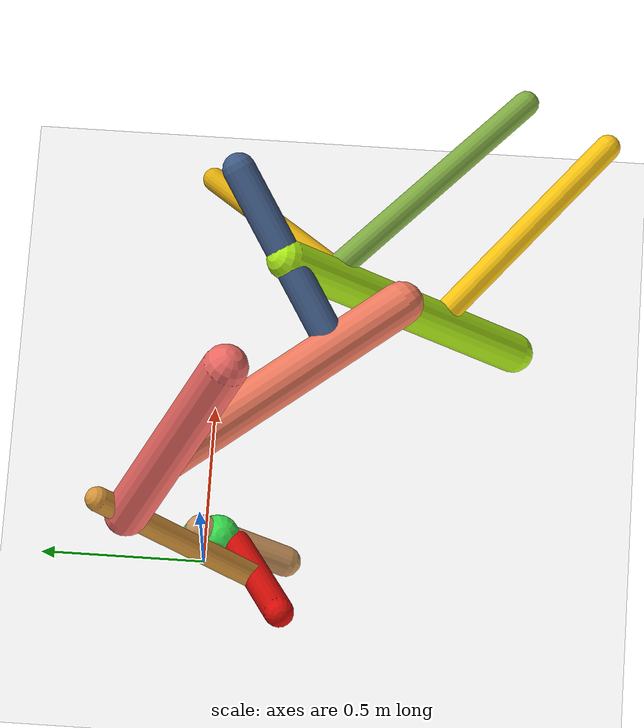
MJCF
<mujoco model="morphology">
  <option timestep="0.01"/>
  <default>
    <default class="/"/>
    <default class="0/"/>
    <default class="0/1/"/>
    <default class="0/2/"/>
    <default class="0/2/3/"/>
    <default class="0/2/3/4/"/>
    <default class="0/2/3/4/5/"/>
    <default class="0/2/3/4/5/6/"/>
    <default class="0/2/3/4/5/6/7/"/>
    <default class="0/2/3/4/5/6/7/8/"/>
    <default class="0/2/3/4/5/6/7/9/"/>
    <default class="0/2/3/4/5/6/7/10/"/>
  </default>
  <asset>
    <texture name="texplane" type="2d" builtin="checker" rgb1="0.10000000000000001 0.20000000000000001 0.29999999999999999" rgb2="0.20000000000000001 0.29999999999999999 0.40000000000000002" width="300" height="300"/>
    <material name="MatPlane" class="/" texture="texplane" texrepeat="20 20" specular="1" shininess="1" reflectance="0.5"/>
  </asset>
  <worldbody>
    <light name="//unnamed_light_0" class="/" directional="true" pos="0 0 1.5" dir="0 0 -1.3" cutoff="100" exponent="1" diffuse="1 1 1" specular="0.10000000000000001 0.10000000000000001 0.10000000000000001"/>
    <geom name="ground" class="/" type="plane" size="15 15 0.5" material="MatPlane" rgba="1 1 1 1"/>
    <site name="body" class="/" size="9.9999999999999995e-07 9.9999999999999995e-07 9.9999999999999995e-07" pos="0 0 0.32635678946971891"/>
    <body pos="0 0 0.32635678946971891" name="0/">
      <freejoint name="0/"/>
      <geom name="0/geom" class="0/" type="capsule" contype="1" conaffinity="1" condim="3" size="0.046839372171486982" rgba="0.78868283077555978 0.5805051225326302 0.35997859846744018 1" friction="0.59999999999999998 0.10000000000000001 0.10000000000000001" fromto="0 0 0 -0.040083321163918995 -0.25644333106639372 -0.13655974808408788"/>
      <site name="0/end0" class="0/" size="0.0050000000000000001" pos="-0.040083321163918995 -0.25644333106639372 -0.13655974808408788"/>
      <site name="0/attach1" class="0/" size="9.9999999999999995e-07 9.9999999999999995e-07 9.9999999999999995e-07" pos="-0.0083305398725866137 -0.053296766147973872 -0.028381291603872965"/>
      <body pos="-0.0083305398725866137 -0.053296766147973872 -0.028381291603872965" name="0/1/">
        <joint name="0/1/joint/" class="0/" type="hinge" axis="0 1 0" limited="true" range="-56.793184028379493 56.793184028379493"/>
        <geom name="0/1/geom" class="0/1/" type="capsule" contype="1" conaffinity="1" condim="3" size="0.065331007744837494" rgba="0.23101394762892191 0.89865672967499666 0.31548158974294505 1" friction="0.59999999999999998 0.10000000000000001 0.10000000000000001" fromto="0 0 0 0.051951565316239567 0.061126741015887998 -0.19797550238623063"/>
        <site name="0/1/end1" class="0/1/" size="0.0050000000000000001" pos="0.051951565316239567 0.061126741015887998 -0.19797550238623063"/>
      </body>
      <site name="0/attach2" class="0/" size="9.9999999999999995e-07 9.9999999999999995e-07 9.9999999999999995e-07" pos="-0.016424501585551782 -0.10507996282243087 -0.055956585776844842"/>
      <body pos="-0.016424501585551782 -0.10507996282243087 -0.055956585776844842" name="0/2/">
        <joint name="0/2/joint/" class="0/" type="hinge" axis="0 0 1" limited="true" range="-60.334157332296527 60.334157332296527"/>
        <geom name="0/2/geom" class="0/2/" type="capsule" contype="1" conaffinity="1" condim="3" size="0.044072202728796181" rgba="0.86791684756073628 0.054809564776601039 0.034986050362468935 1" friction="0.59999999999999998 0.10000000000000001 0.10000000000000001" fromto="0 0 0 -0.36138446949488789 -0.15940355148648433 0.51153245315328411"/>
        <site name="0/2/end2" class="0/2/" size="0.0050000000000000001" pos="-0.36138446949488789 -0.15940355148648433 0.51153245315328411"/>
        <site name="0/2/attach3" class="0/2/" size="9.9999999999999995e-07 9.9999999999999995e-07 9.9999999999999995e-07" pos="-0.18960234169833629 -0.083631946550199704 0.26837830388261646"/>
        <body pos="-0.18960234169833629 -0.083631946550199704 0.26837830388261646" name="0/2/3/">
          <geom name="0/2/3/geom" class="0/2/3/" type="capsule" contype="1" conaffinity="1" condim="3" size="0.036987365384858445" rgba="0.86311592712576446 0.59731321840203244 0.23212294014935408 1" friction="0.59999999999999998 0.10000000000000001 0.10000000000000001" fromto="0 0 0 0.06475863007214544 0.45800297219664987 0.45841255147568694"/>
          <site name="0/2/3/end3" class="0/2/3/" size="0.0050000000000000001" pos="0.06475863007214544 0.45800297219664987 0.45841255147568694"/>
          <site name="0/2/3/attach4" class="0/2/3/" size="9.9999999999999995e-07 9.9999999999999995e-07 9.9999999999999995e-07" pos="0.053372098946744113 0.37747215966041275 0.37780972248073413"/>
          <body pos="0.053372098946744113 0.37747215966041275 0.37780972248073413" name="0/2/3/4/">
            <joint name="0/2/3/4/joint/" class="0/2/3/" type="hinge" axis="-0.99504353404878343 0.070283449020560052 0.0703463015480012" limited="true" range="-62.052106567788499 62.052106567788499"/>
            <geom name="0/2/3/4/geom" class="0/2/3/4/" type="capsule" contype="1" conaffinity="1" condim="3" size="0.066045373632138152" rgba="0.94766507909945064 0.42286284489964066 0.4002927586128352 1" friction="0.59999999999999998 0.10000000000000001 0.10000000000000001" fromto="0 0 0 0.25113441187789665 -0.27664116954460644 0.5931275535961702"/>
            <site name="0/2/3/4/end4" class="0/2/3/4/" size="0.0050000000000000001" pos="0.25113441187789665 -0.27664116954460644 0.5931275535961702"/>
            <site name="0/2/3/4/attach5" class="0/2/3/4/" size="9.9999999999999995e-07 9.9999999999999995e-07 9.9999999999999995e-07" pos="0.094008321017555546 -0.10355638511963845 0.22202821606915638"/>
            <body pos="0.094008321017555546 -0.10355638511963845 0.22202821606915638" name="0/2/3/4/5/">
              <joint name="0/2/3/4/5/joint/" class="0/2/3/4/" type="hinge" axis="0 0.90627193835528386 0.42269513097474493" limited="true" range="-50.406534322303855 50.406534322303855"/>
              <geom name="0/2/3/4/5/geom" class="0/2/3/4/5/" type="capsule" contype="1" conaffinity="1" condim="3" size="0.064934673836505849" rgba="0.95850017695511491 0.49087370729599489 0.37861668955915617 1" friction="0.59999999999999998 0.10000000000000001 0.10000000000000001" fromto="0 0 0 0.54849941921309986 -0.6448886115613448 -0.080364076591232347"/>
              <site name="0/2/3/4/5/end5" class="0/2/3/4/5/" size="0.0050000000000000001" pos="0.54849941921309986 -0.6448886115613448 -0.080364076591232347"/>
              <site name="0/2/3/4/5/attach6" class="0/2/3/4/5/" size="9.9999999999999995e-07 9.9999999999999995e-07 9.9999999999999995e-07" pos="0.39180938488749512 -0.46066304059044783 -0.057406440760567126"/>
              <body pos="0.39180938488749512 -0.46066304059044783 -0.057406440760567126" name="0/2/3/4/5/6/">
                <joint name="0/2/3/4/5/6/joint/" class="0/2/3/4/5/" type="hinge" axis="0.76419528625700128 0.64003440598216677 0.079759160111144145" limited="true" range="-66.667524365663539 66.667524365663539"/>
                <geom name="0/2/3/4/5/6/geom" class="0/2/3/4/5/6/" type="capsule" contype="1" conaffinity="1" condim="3" size="0.048611533085937769" rgba="0.25461946543068836 0.36321500172817578 0.53660791653826756 1" friction="0.59999999999999998 0.10000000000000001 0.10000000000000001" fromto="0 0 0 0.45560833988373339 0.3036884341301358 0.18923065055879218"/>
                <site name="0/2/3/4/5/6/end6" class="0/2/3/4/5/6/" size="0.0050000000000000001" pos="0.45560833988373339 0.3036884341301358 0.18923065055879218"/>
                <site name="0/2/3/4/5/6/attach7" class="0/2/3/4/5/6/" size="9.9999999999999995e-07 9.9999999999999995e-07 9.9999999999999995e-07" pos="0.22450766342848597 0.14964691114787626 0.093246166689679499"/>
                <body pos="0.22450766342848597 0.14964691114787626 0.093246166689679499" name="0/2/3/4/5/6/7/">
                  <joint name="0/2/3/4/5/6/7/joint/" class="0/2/3/4/5/6/" type="hinge" axis="-0.61765255767770544 0.66747619416870463 0.41590966352352415" limited="true" range="-41.978673506990624 41.978673506990624"/>
                  <geom name="0/2/3/4/5/6/7/geom" class="0/2/3/4/5/6/7/" type="capsule" contype="1" conaffinity="1" condim="3" size="0.060411190421868405" rgba="0.69725390399020748 0.94890861351352673 0.094234912010238814 1" friction="0.59999999999999998 0.10000000000000001 0.10000000000000001" fromto="0 0 0 0.017914468095775016 -0.67719633262165013 -0.70141996114889182"/>
                  <site name="0/2/3/4/5/6/7/end7" class="0/2/3/4/5/6/7/" size="0.0050000000000000001" pos="0.017914468095775016 -0.67719633262165013 -0.70141996114889182"/>
                  <site name="0/2/3/4/5/6/7/attach8" class="0/2/3/4/5/6/7/" size="9.9999999999999995e-07 9.9999999999999995e-07 9.9999999999999995e-07" pos="0.0030846165568256725 -0.11660357475637334 -0.12077453898607027"/>
                  <body pos="0.0030846165568256725 -0.11660357475637334 -0.12077453898607027" name="0/2/3/4/5/6/7/8/">
                    <joint name="0/2/3/4/5/6/7/8/joint/" class="0/2/3/4/5/6/7/" type="hinge" axis="0 -0.71942028675606107 0.69457501466999716" limited="true" range="-32.394018873359911 32.394018873359911"/>
                    <geom name="0/2/3/4/5/6/7/8/geom" class="0/2/3/4/5/6/7/8/" type="capsule" contype="1" conaffinity="1" condim="3" size="0.038551866670464389" rgba="0.52045942122430255 0.69857822034396921 0.26966258425756562 1" friction="0.59999999999999998 0.10000000000000001 0.10000000000000001" fromto="0 0 0 0.69128948906866272 -0.55145400347465601 -0.25431059889020613"/>
                    <site name="0/2/3/4/5/6/7/8/end8" class="0/2/3/4/5/6/7/8/" size="0.0050000000000000001" pos="0.69128948906866272 -0.55145400347465601 -0.25431059889020613"/>
                  </body>
                  <site name="0/2/3/4/5/6/7/attach9" class="0/2/3/4/5/6/7/" size="9.9999999999999995e-07 9.9999999999999995e-07 9.9999999999999995e-07" pos="0.011703312074762216 -0.44240442831929794 -0.45822944096950791"/>
                  <body pos="0.011703312074762216 -0.44240442831929794 -0.45822944096950791" name="0/2/3/4/5/6/7/9/">
                    <geom name="0/2/3/4/5/6/7/9/geom" class="0/2/3/4/5/6/7/9/" type="capsule" contype="1" conaffinity="1" condim="3" size="0.038114850620838012" rgba="0.99862292051644019 0.78250077810829077 0.070999771665691047 1" friction="0.59999999999999998 0.10000000000000001 0.10000000000000001" fromto="0 0 0 0.5242968876256302 -0.47242967879656628 0.16010459047394088"/>
                    <site name="0/2/3/4/5/6/7/9/end9" class="0/2/3/4/5/6/7/9/" size="0.0050000000000000001" pos="0.5242968876256302 -0.47242967879656628 0.16010459047394088"/>
                  </body>
                  <site name="0/2/3/4/5/6/7/attach10" class="0/2/3/4/5/6/7/" size="9.9999999999999995e-07 9.9999999999999995e-07 9.9999999999999995e-07" pos="0.0059534536663223307 -0.22505033181628392 -0.23310048710396167"/>
                  <body pos="0.0059534536663223307 -0.22505033181628392 -0.23310048710396167" name="0/2/3/4/5/6/7/10/">
                    <joint name="0/2/3/4/5/6/7/10/joint/" class="0/2/3/4/5/6/7/" type="hinge" axis="0 -0.71942028675606107 0.69457501466999716" limited="true" range="-39.701061198035248 39.701061198035248"/>
                    <geom name="0/2/3/4/5/6/7/10/geom" class="0/2/3/4/5/6/7/10/" type="capsule" contype="1" conaffinity="1" condim="3" size="0.035156196029590726" rgba="0.90516849621767081 0.68870503416350493 0.048569727765572002 1" friction="0.59999999999999998 0.10000000000000001 0.10000000000000001" fromto="0 0 0 0.37471792209641586 0.46927888583613719 -0.12696977628850759"/>
                    <site name="0/2/3/4/5/6/7/10/end10" class="0/2/3/4/5/6/7/10/" size="0.0050000000000000001" pos="0.37471792209641586 0.46927888583613719 -0.12696977628850759"/>
                  </body>
                </body>
              </body>
            </body>
          </body>
        </body>
      </body>
      <camera name="0/iso" class="0/" mode="trackcom" pos="-2.2999999999999998 -2.2999999999999998 1" xyaxes="0.45000000000000001 -0.45000000000000001 0 0.29999999999999999 0.14999999999999999 0.93999999999999995"/>
    </body>
  </worldbody>
  <actuator>
    <motor name="0/1/motor" class="0/1/" ctrllimited="true" ctrlrange="-1 1" gear="97" joint="0/1/joint/"/>
    <motor name="0/2/motor" class="0/2/" ctrllimited="true" ctrlrange="-1 1" gear="82" joint="0/2/joint/"/>
    <motor name="0/2/3/4/motor" class="0/2/3/4/" ctrllimited="true" ctrlrange="-1 1" gear="60" joint="0/2/3/4/joint/"/>
    <motor name="0/2/3/4/5/motor" class="0/2/3/4/5/" ctrllimited="true" ctrlrange="-1 1" gear="54" joint="0/2/3/4/5/joint/"/>
    <motor name="0/2/3/4/5/6/motor" class="0/2/3/4/5/6/" ctrllimited="true" ctrlrange="-1 1" gear="88" joint="0/2/3/4/5/6/joint/"/>
    <motor name="0/2/3/4/5/6/7/motor" class="0/2/3/4/5/6/7/" ctrllimited="true" ctrlrange="-1 1" gear="78" joint="0/2/3/4/5/6/7/joint/"/>
    <motor name="0/2/3/4/5/6/7/8/motor" class="0/2/3/4/5/6/7/8/" ctrllimited="true" ctrlrange="-1 1" gear="56" joint="0/2/3/4/5/6/7/8/joint/"/>
    <motor name="0/2/3/4/5/6/7/10/motor" class="0/2/3/4/5/6/7/10/" ctrllimited="true" ctrlrange="-1 1" gear="68" joint="0/2/3/4/5/6/7/10/joint/"/>
  </actuator>
  <sensor>
    <subtreelinvel name="velocity" body="0/"/>
  </sensor>
</mujoco>
